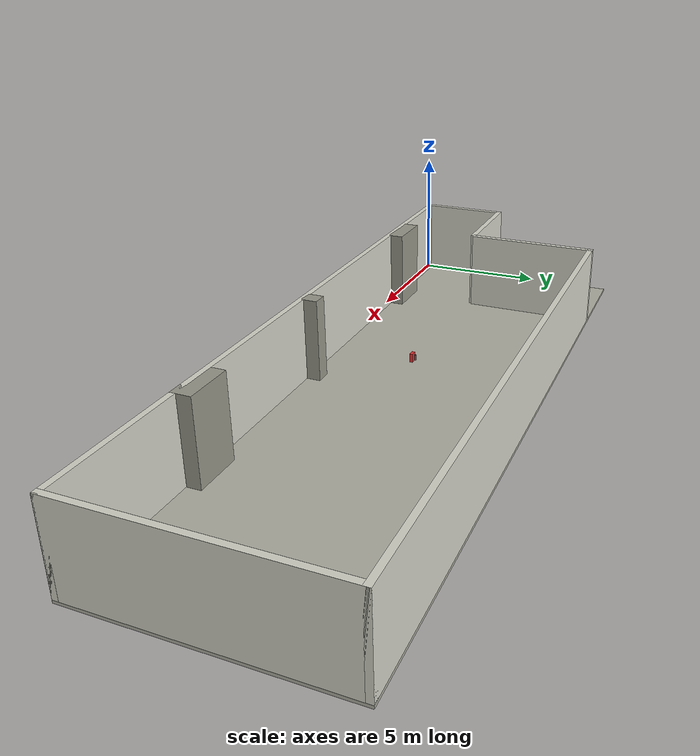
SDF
<?xml version="1.0" ?>
<sdf version="1.8">
  <world name="scenario_indoor_lshaped">

    <physics name="1ms" type="ignored">
      <max_step_size>0.001</max_step_size>
      <real_time_factor>1.0</real_time_factor>
    </physics>

    <plugin filename="ignition-gazebo-physics-system"
            name="ignition::gazebo::systems::Physics"/>
    <plugin filename="ignition-gazebo-scene-broadcaster-system"
            name="ignition::gazebo::systems::SceneBroadcaster"/>
    <plugin filename="ignition-gazebo-user-commands-system"
            name="ignition::gazebo::systems::UserCommands"/>

    <plugin filename="libHeatmapPlugin.so"
            name="heatmap_plugin::HeatmapPlugin">
      <grid_w>256</grid_w>
      <grid_h>256</grid_h>
      <cell_size>0.15</cell_size>
      <frequency_hz>3500000000</frequency_hz>
      <tx_dbm>20.0</tx_dbm>
      <tx_height>1.5</tx_height>
      <rx_height>1.0</rx_height>
      <tx_gain_dbi>5.0</tx_gain_dbi>
      <rx_gain_dbi>0.0</rx_gain_dbi>

      <!-- GNB POSITION - MODIFY THESE VALUES TO CHANGE GNB LOCATION    -->
      <!-- Current: Center of building at 1.5m height                   -->
      <!-- Format: x y z roll pitch yaw                                 -->
      <!-- Building spans: X: 0 to 24.75m, Y: 0 to 8.3m                 -->
      <gnb_pose>12.375 4.15 1.5 0 0 0</gnb_pose>

      <propagation_model>3gpp_umi</propagation_model>
      <wall_loss_db>12.0</wall_loss_db>
      <reflection_coeff>0.7</reflection_coeff>
      <include_shadowing>false</include_shadowing>
      <max_reflections>3</max_reflections>
      <max_diffractions>1</max_diffractions>
    </plugin>

    <!-- GUI Configuration -->
    <gui fullscreen="0">
      <plugin filename="GzScene3D" name="3D View">
        <ignition-gui>
          <title>3D View</title>
          <property type="bool" key="showTitleBar">true</property>
          <property type="string" key="state">docked</property>
        </ignition-gui>
        <engine>ogre2</engine>
        <scene>scene</scene>
        <ambient_light>0.6 0.6 0.6</ambient_light>
        <background_color>0.8 0.8 0.8</background_color>
        <camera_pose>12 -15 20 0 0.8 1.57</camera_pose>
      </plugin>

      <plugin filename="WorldControl" name="World control">
        <ignition-gui>
          <property type="bool" key="showTitleBar">false</property>
          <property type="string" key="state">floating</property>
          <anchors target="3D View">
            <line own="left" target="left"/>
            <line own="bottom" target="bottom"/>
          </anchors>
        </ignition-gui>
        <play_pause>true</play_pause>
        <step>true</step>
        <start_paused>false</start_paused>
      </plugin>

      <plugin filename="ImageDisplay" name="RF Heatmap">
        <ignition-gui>
          <title>RF Signal Heatmap</title>
          <property type="bool" key="showTitleBar">true</property>
          <property type="string" key="state">docked</property>
        </ignition-gui>
        <topic>/gnb/heatmap</topic>
      </plugin>

      <plugin filename="EntityTree" name="Entity tree">
        <ignition-gui>
          <title>Entity tree</title>
          <property type="bool" key="showTitleBar">true</property>
          <property type="string" key="state">docked</property>
        </ignition-gui>
      </plugin>
    </gui>

    <!-- Lighting -->
    <light type="directional" name="sun">
      <cast_shadows>true</cast_shadows>
      <pose>12 4 10 0 0 0</pose>
      <diffuse>0.9 0.9 0.9 1</diffuse>
      <specular>0.3 0.3 0.3 1</specular>
      <direction>-0.3 0.2 -0.9</direction>
    </light>

    <light type="point" name="indoor_light_1">
      <pose>8 4 2.8 0 0 0</pose>
      <diffuse>0.8 0.8 0.7 1</diffuse>
      <specular>0.2 0.2 0.2 1</specular>
      <attenuation>
        <range>15</range>
        <constant>0.5</constant>
        <linear>0.01</linear>
        <quadratic>0.001</quadratic>
      </attenuation>
    </light>

    <light type="point" name="indoor_light_2">
      <pose>18 4 2.8 0 0 0</pose>
      <diffuse>0.8 0.8 0.7 1</diffuse>
      <specular>0.2 0.2 0.2 1</specular>
      <attenuation>
        <range>15</range>
        <constant>0.5</constant>
        <linear>0.01</linear>
        <quadratic>0.001</quadratic>
      </attenuation>
    </light>

    <!-- FLOOR                                                            -->

    <!-- Main floor area -->
    <model name="floor_main">
      <static>true</static>
      <pose>12.375 4.15 -0.05 0 0 0</pose>
      <link name="link">
        <collision name="collision">
          <geometry><box><size>24.75 8.3 0.1</size></box></geometry>
        </collision>
        <visual name="visual">
          <geometry><box><size>24.75 8.3 0.1</size></box></geometry>
          <material>
            <ambient>0.7 0.7 0.65 1</ambient>
            <diffuse>0.7 0.7 0.65 1</diffuse>
            <specular>0.2 0.2 0.2 1</specular>
          </material>
        </visual>
      </link>
    </model>

    <!-- WALLS - 0.2m thick, 3m tall                                     -->
    <!-- Wall material: Light grey concrete                               -->

    <!-- NORTH WALL (Top) - Full width minus L-cutout -->
    <!-- Section 1: From L-cutout to right edge -->
    <model name="wall_north_main">
      <static>true</static>
      <!-- Position: starts after L-cutout (3.7m from left), extends to right edge -->
      <!-- Length: 24.75 - 3.7 = 21.05m -->
      <pose>14.225 8.2 1.5 0 0 0</pose>
      <link name="link">
        <collision name="collision">
          <geometry><box><size>21.05 0.2 3.0</size></box></geometry>
        </collision>
        <visual name="visual">
          <geometry><box><size>21.05 0.2 3.0</size></box></geometry>
          <material>
            <ambient>0.85 0.85 0.8 1</ambient>
            <diffuse>0.85 0.85 0.8 1</diffuse>
            <specular>0.1 0.1 0.1 1</specular>
          </material>
        </visual>
      </link>
    </model>

    <!-- SOUTH WALL (Bottom) - Full width with door openings for pillars -->
    <model name="wall_south">
      <static>true</static>
      <pose>12.375 0.1 1.5 0 0 0</pose>
      <link name="link">
        <collision name="collision">
          <geometry><box><size>24.75 0.2 3.0</size></box></geometry>
        </collision>
        <visual name="visual">
          <geometry><box><size>24.75 0.2 3.0</size></box></geometry>
          <material>
            <ambient>0.85 0.85 0.8 1</ambient>
            <diffuse>0.85 0.85 0.8 1</diffuse>
            <specular>0.1 0.1 0.1 1</specular>
          </material>
        </visual>
      </link>
    </model>

    <!-- WEST WALL (Left) - Lower section (below L-cutout) -->
    <model name="wall_west_lower">
      <static>true</static>
      <!-- Height of lower section: 8.3 - 4.93 = 3.37m from bottom -->
      <pose>0.1 1.685 1.5 0 0 0</pose>
      <link name="link">
        <collision name="collision">
          <geometry><box><size>0.2 3.37 3.0</size></box></geometry>
        </collision>
        <visual name="visual">
          <geometry><box><size>0.2 3.37 3.0</size></box></geometry>
          <material>
            <ambient>0.85 0.85 0.8 1</ambient>
            <diffuse>0.85 0.85 0.8 1</diffuse>
            <specular>0.1 0.1 0.1 1</specular>
          </material>
        </visual>
      </link>
    </model>

    <!-- L-CUTOUT - Horizontal wall (inner top of L) -->
    <model name="wall_l_horizontal">
      <static>true</static>
      <!-- At Y = 3.37m from bottom, spanning 3.7m -->
      <pose>1.85 3.37 1.5 0 0 0</pose>
      <link name="link">
        <collision name="collision">
          <geometry><box><size>3.7 0.2 3.0</size></box></geometry>
        </collision>
        <visual name="visual">
          <geometry><box><size>3.7 0.2 3.0</size></box></geometry>
          <material>
            <ambient>0.85 0.85 0.8 1</ambient>
            <diffuse>0.85 0.85 0.8 1</diffuse>
            <specular>0.1 0.1 0.1 1</specular>
          </material>
        </visual>
      </link>
    </model>

    <!-- L-CUTOUT - Vertical wall (inner right of L) -->
    <model name="wall_l_vertical">
      <static>true</static>
      <!-- At X = 3.7m, from Y=3.37 to Y=8.3 -->
      <!-- Height: 8.3 - 3.37 = 4.93m -->
      <pose>3.7 5.835 1.5 0 0 0</pose>
      <link name="link">
        <collision name="collision">
          <geometry><box><size>0.2 4.93 3.0</size></box></geometry>
        </collision>
        <visual name="visual">
          <geometry><box><size>0.2 4.93 3.0</size></box></geometry>
          <material>
            <ambient>0.85 0.85 0.8 1</ambient>
            <diffuse>0.85 0.85 0.8 1</diffuse>
            <specular>0.1 0.1 0.1 1</specular>
          </material>
        </visual>
      </link>
    </model>

    <!-- EAST WALL (Right) - Full height -->
    <model name="wall_east">
      <static>true</static>
      <pose>24.65 4.15 1.5 0 0 0</pose>
      <link name="link">
        <collision name="collision">
          <geometry><box><size>0.2 8.3 3.0</size></box></geometry>
        </collision>
        <visual name="visual">
          <geometry><box><size>0.2 8.3 3.0</size></box></geometry>
          <material>
            <ambient>0.85 0.85 0.8 1</ambient>
            <diffuse>0.85 0.85 0.8 1</diffuse>
            <specular>0.1 0.1 0.1 1</specular>
          </material>
        </visual>
      </link>
    </model>

    <!-- PILLARS - Along south wall                                       -->
    <!-- Pillar 1 & 3: 1.7m wide x 0.7m deep                             -->
    <!-- Pillar 2 (middle): 0.535m wide x 0.7m deep                      -->

    <!-- PILLAR 1 (Left) - After 3.25m from left edge -->
    <!-- Position: 3.25 + 1.7/2 = 4.1m from left -->
    <model name="pillar_1">
      <static>true</static>
      <pose>4.1 0.35 1.5 0 0 0</pose>
      <link name="link">
        <collision name="collision">
          <geometry><box><size>1.7 0.7 3.0</size></box></geometry>
        </collision>
        <visual name="visual">
          <geometry><box><size>1.7 0.7 3.0</size></box></geometry>
          <material>
            <ambient>0.6 0.6 0.55 1</ambient>
            <diffuse>0.6 0.6 0.55 1</diffuse>
            <specular>0.15 0.15 0.15 1</specular>
          </material>
        </visual>
      </link>
    </model>

    <!-- PILLAR 2 (Middle) - After pillar 1 + 7.01m gap -->
    <!-- Position: 3.25 + 1.7 + 7.01 + 0.535/2 = 12.2275m from left -->
    <model name="pillar_2_middle">
      <static>true</static>
      <pose>12.2275 0.35 1.5 0 0 0</pose>
      <link name="link">
        <collision name="collision">
          <geometry><box><size>0.535 0.7 3.0</size></box></geometry>
        </collision>
        <visual name="visual">
          <geometry><box><size>0.535 0.7 3.0</size></box></geometry>
          <material>
            <ambient>0.6 0.6 0.55 1</ambient>
            <diffuse>0.6 0.6 0.55 1</diffuse>
            <specular>0.15 0.15 0.15 1</specular>
          </material>
        </visual>
      </link>
    </model>

    <!-- PILLAR 3 (Right) - After pillar 2 + 5.75m gap -->
    <!-- Position: 12.2275 + 0.535/2 + 5.75 + 1.7/2 = 19.095m from left -->
    <model name="pillar_3">
      <static>true</static>
      <pose>18.845 0.35 1.5 0 0 0</pose>
      <link name="link">
        <collision name="collision">
          <geometry><box><size>1.7 0.7 3.0</size></box></geometry>
        </collision>
        <visual name="visual">
          <geometry><box><size>1.7 0.7 3.0</size></box></geometry>
          <material>
            <ambient>0.6 0.6 0.55 1</ambient>
            <diffuse>0.6 0.6 0.55 1</diffuse>
            <specular>0.15 0.15 0.15 1</specular>
          </material>
        </visual>
      </link>
    </model>

    <!-- CEILING - REMOVED FOR VISIBILITY                                 -->
    <!-- Uncomment below if you want to add ceiling back                  -->

    <!-- GNB VISUAL MARKER                                                -->
    <!-- This shows where the gNB antenna is located                      -->
    <model name="gnb_marker">
      <static>true</static>
      <!-- GNB VISUAL POSITION - Keep in sync with gnb_pose above!      -->
      <pose>12.375 4.15 1.5 0 0 0</pose>
      <link name="link">
        <!-- Antenna unit -->
        <visual name="antenna_box">
          <pose>0 0 0 0 0 0</pose>
          <geometry><box><size>0.2 0.1 0.3</size></box></geometry>
          <material>
            <ambient>0.9 0.2 0.2 1</ambient>
            <diffuse>0.9 0.2 0.2 1</diffuse>
            <specular>0.3 0.1 0.1 1</specular>
          </material>
        </visual>
        <!-- Mounting bracket -->
        <visual name="mount">
          <pose>0 0.1 0 0 0 0</pose>
          <geometry><cylinder><radius>0.03</radius><length>0.2</length></cylinder></geometry>
          <material>
            <ambient>0.3 0.3 0.3 1</ambient>
            <diffuse>0.3 0.3 0.3 1</diffuse>
          </material>
        </visual>
      </link>
    </model>

  </world>
</sdf>
